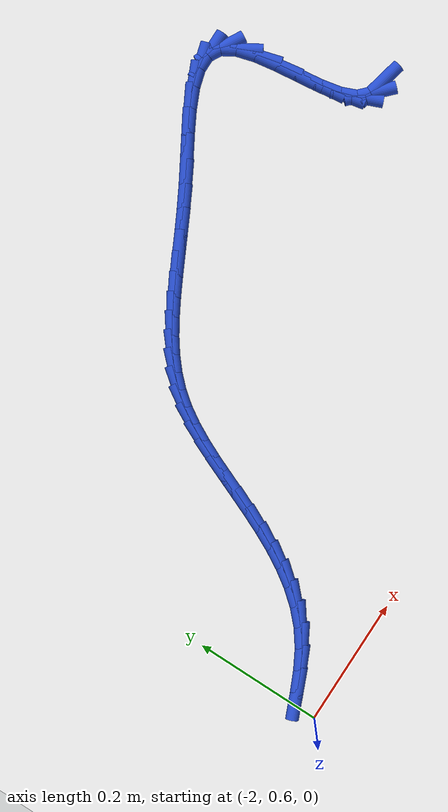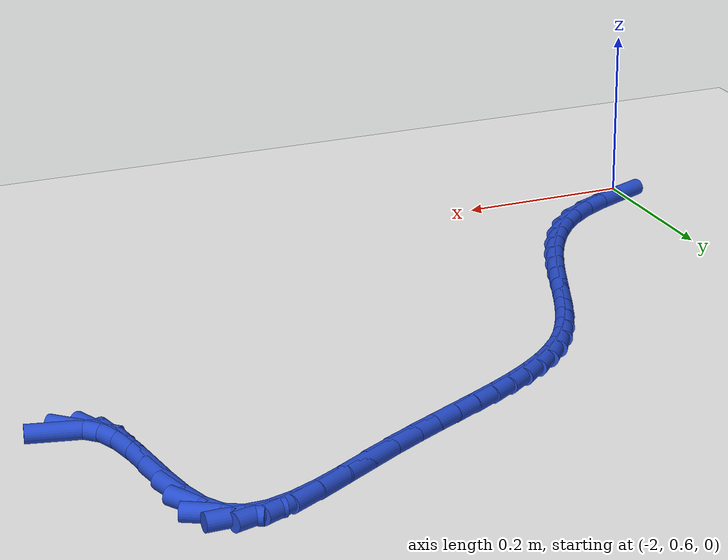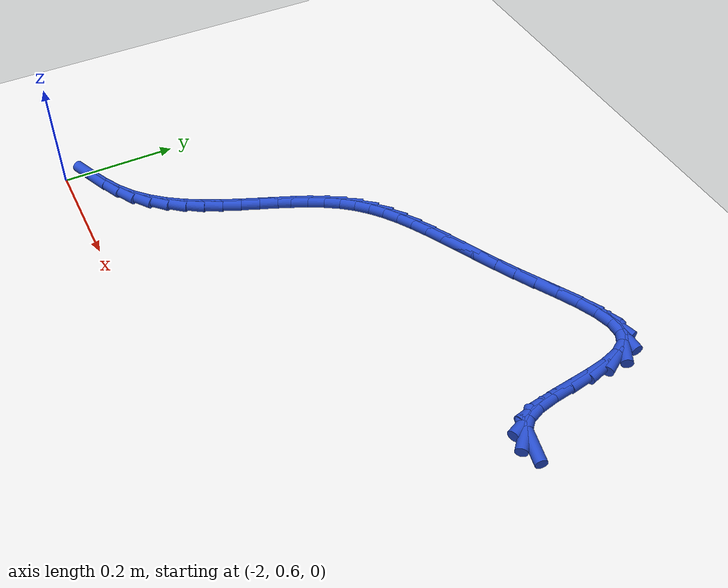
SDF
<sdf version="1.6">
 <world name="default">
  <model name="ground_plane">
   <static>1</static>
   <link name="link">
    <collision name="collision">
     <geometry><plane><normal>0 0 1</normal><size>100 100</size></plane></geometry>
     <surface><friction><ode><mu>100</mu><mu2>50</mu2></ode></friction></surface>
    </collision>
    <visual name="visual">
     <cast_shadows>0</cast_shadows>
     <geometry><plane><normal>0 0 1</normal><size>100 100</size></plane></geometry>
     <material>
      <script><uri>file://media/materials/scripts/gazebo.material</uri><name>Gazebo/WhiteGlow</name></script>
     </material>
    </visual>
   </link>
  </model>
  <model name="line">
   <link name="link_63">
    <pose>-1.1532234476981205 1.034662921738135 0.01 0 1.57 -0.22421597552221068</pose>
    <collision name="collision">
     <geometry><cylinder><radius>0.01</radius><length>0.08</length></cylinder></geometry>
    </collision>
    <visual name="visual">
     <material>
      <script><name>Gazebo/Blue</name><uri>file://media/materials/scripts/gazebo.material</uri></script>
     </material>
     <geometry><cylinder><radius>0.01</radius><length>0.08</length></cylinder></geometry>
    </visual>
   </link>
   <link name="link_64">
    <pose>-1.172145907120099 1.038978196619294 0.01 0 1.57 -0.76211372244683</pose>
    <collision name="collision">
     <geometry><cylinder><radius>0.01</radius><length>0.08</length></cylinder></geometry>
    </collision>
    <visual name="visual">
     <material>
      <script><name>Gazebo/Blue</name><uri>file://media/materials/scripts/gazebo.material</uri></script>
     </material>
     <geometry><cylinder><radius>0.01</radius><length>0.08</length></cylinder></geometry>
    </visual>
   </link>
   <link name="link_65">
    <pose>-1.1865720754225162 1.0527477252090103 0.01 0 1.57 -1.176701932565536</pose>
    <collision name="collision">
     <geometry><cylinder><radius>0.01</radius><length>0.08</length></cylinder></geometry>
    </collision>
    <visual name="visual">
     <material>
      <script><name>Gazebo/Blue</name><uri>file://media/materials/scripts/gazebo.material</uri></script>
     </material>
     <geometry><cylinder><radius>0.01</radius><length>0.08</length></cylinder></geometry>
    </visual>
   </link>
   <link name="link_66">
    <pose>-1.196382306854327 1.0763385629009252 0.01 0 1.57 -1.3641741149394202</pose>
    <collision name="collision">
     <geometry><cylinder><radius>0.01</radius><length>0.08</length></cylinder></geometry>
    </collision>
    <visual name="visual">
     <material>
      <script><name>Gazebo/Blue</name><uri>file://media/materials/scripts/gazebo.material</uri></script>
     </material>
     <geometry><cylinder><radius>0.01</radius><length>0.08</length></cylinder></geometry>
    </visual>
   </link>
   <link name="link_67">
    <pose>-1.2028511145712488 1.1071991733842588 0.01 0 1.57 -1.4386640644127144</pose>
    <collision name="collision">
     <geometry><cylinder><radius>0.01</radius><length>0.08</length></cylinder></geometry>
    </collision>
    <visual name="visual">
     <material>
      <script><name>Gazebo/Blue</name><uri>file://media/materials/scripts/gazebo.material</uri></script>
     </material>
     <geometry><cylinder><radius>0.01</radius><length>0.08</length></cylinder></geometry>
    </visual>
   </link>
   <link name="link_68">
    <pose>-1.2075086519510703 1.1422428522064645 0.01 0 1.57 -1.4502869412167136</pose>
    <collision name="collision">
     <geometry><cylinder><radius>0.01</radius><length>0.08</length></cylinder></geometry>
    </collision>
    <visual name="visual">
     <material>
      <script><name>Gazebo/Blue</name><uri>file://media/materials/scripts/gazebo.material</uri></script>
     </material>
     <geometry><cylinder><radius>0.01</radius><length>0.08</length></cylinder></geometry>
    </visual>
   </link>
   <link name="link_69">
    <pose>-1.2118850723715813 1.1783828949149986 0.01 0 1.57 -1.4075332361102582</pose>
    <collision name="collision">
     <geometry><cylinder><radius>0.01</radius><length>0.08</length></cylinder></geometry>
    </collision>
    <visual name="visual">
     <material>
      <script><name>Gazebo/Blue</name><uri>file://media/materials/scripts/gazebo.material</uri></script>
     </material>
     <geometry><cylinder><radius>0.01</radius><length>0.08</length></cylinder></geometry>
    </visual>
   </link>
   <link name="link_70">
    <pose>-1.217510529210571 1.2125325970573153 0.01 0 1.57 -1.2893774932133544</pose>
    <collision name="collision">
     <geometry><cylinder><radius>0.01</radius><length>0.08</length></cylinder></geometry>
    </collision>
    <visual name="visual">
     <material>
      <script><name>Gazebo/Blue</name><uri>file://media/materials/scripts/gazebo.material</uri></script>
     </material>
     <geometry><cylinder><radius>0.01</radius><length>0.08</length></cylinder></geometry>
    </visual>
   </link>
   <link name="link_71">
    <pose>-1.2259151758458275 1.2416052541808689 0.01 0 1.57 -1.0244672539413715</pose>
    <collision name="collision">
     <geometry><cylinder><radius>0.01</radius><length>0.08</length></cylinder></geometry>
    </collision>
    <visual name="visual">
     <material>
      <script><name>Gazebo/Blue</name><uri>file://media/materials/scripts/gazebo.material</uri></script>
     </material>
     <geometry><cylinder><radius>0.01</radius><length>0.08</length></cylinder></geometry>
    </visual>
   </link>
   <link name="link_72">
    <pose>-1.2386291656551405 1.2625141618331148 0.01 0 1.57 -0.5061247348028546</pose>
    <collision name="collision">
     <geometry><cylinder><radius>0.01</radius><length>0.08</length></cylinder></geometry>
    </collision>
    <visual name="visual">
     <material>
      <script><name>Gazebo/Blue</name><uri>file://media/materials/scripts/gazebo.material</uri></script>
     </material>
     <geometry><cylinder><radius>0.01</radius><length>0.08</length></cylinder></geometry>
    </visual>
   </link>
   <link name="link_73">
    <pose>-1.256935413481992 1.2726609841804362 0.01 0 1.57 -0.003616275205107365</pose>
    <collision name="collision">
     <geometry><cylinder><radius>0.01</radius><length>0.08</length></cylinder></geometry>
    </collision>
    <visual name="visual">
     <material>
      <script><name>Gazebo/Blue</name><uri>file://media/materials/scripts/gazebo.material</uri></script>
     </material>
     <geometry><cylinder><radius>0.01</radius><length>0.08</length></cylinder></geometry>
    </visual>
   </link>
   <link name="link_74">
    <pose>-1.2804468932286968 1.2727460085323137 0.01 0 1.57 0.2787907416674332</pose>
    <collision name="collision">
     <geometry><cylinder><radius>0.01</radius><length>0.08</length></cylinder></geometry>
    </collision>
    <visual name="visual">
     <material>
      <script><name>Gazebo/Blue</name><uri>file://media/materials/scripts/gazebo.material</uri></script>
     </material>
     <geometry><cylinder><radius>0.01</radius><length>0.08</length></cylinder></geometry>
    </visual>
   </link>
   <link name="link_75">
    <pose>-1.3080855146007453 1.2648345766722044 0.01 0 1.57 0.4236594504424177</pose>
    <collision name="collision">
     <geometry><cylinder><radius>0.01</radius><length>0.08</length></cylinder></geometry>
    </collision>
    <visual name="visual">
     <material>
      <script><name>Gazebo/Blue</name><uri>file://media/materials/scripts/gazebo.material</uri></script>
     </material>
     <geometry><cylinder><radius>0.01</radius><length>0.08</length></cylinder></geometry>
    </visual>
   </link>
   <link name="link_76">
    <pose>-1.3387709847617126 1.2509963810498377 0.01 0 1.57 0.496629983979397</pose>
    <collision name="collision">
     <geometry><cylinder><radius>0.01</radius><length>0.08</length></cylinder></geometry>
    </collision>
    <visual name="visual">
     <material>
      <script><name>Gazebo/Blue</name><uri>file://media/materials/scripts/gazebo.material</uri></script>
     </material>
     <geometry><cylinder><radius>0.01</radius><length>0.08</length></cylinder></geometry>
    </visual>
   </link>
   <link name="link_77">
    <pose>-1.3714230108751746 1.2333011141149428 0.01 0 1.57 0.5262626348909103</pose>
    <collision name="collision">
     <geometry><cylinder><radius>0.01</radius><length>0.08</length></cylinder></geometry>
    </collision>
    <visual name="visual">
     <material>
      <script><name>Gazebo/Blue</name><uri>file://media/materials/scripts/gazebo.material</uri></script>
     </material>
     <geometry><cylinder><radius>0.01</radius><length>0.08</length></cylinder></geometry>
    </visual>
   </link>
   <link name="link_78">
    <pose>-1.4049613001047063 1.213818468317248 0.01 0 1.57 0.522503709285398</pose>
    <collision name="collision">
     <geometry><cylinder><radius>0.01</radius><length>0.08</length></cylinder></geometry>
    </collision>
    <visual name="visual">
     <material>
      <script><name>Gazebo/Blue</name><uri>file://media/materials/scripts/gazebo.material</uri></script>
     </material>
     <geometry><cylinder><radius>0.01</radius><length>0.08</length></cylinder></geometry>
    </visual>
   </link>
   <link name="link_79">
    <pose>-1.4383067709681745 1.1946151083307028 0.01 0 1.57 0.4970661245395735</pose>
    <collision name="collision">
     <geometry><cylinder><radius>0.01</radius><length>0.08</length></cylinder></geometry>
    </collision>
    <visual name="visual">
     <material>
      <script><name>Gazebo/Blue</name><uri>file://media/materials/scripts/gazebo.material</uri></script>
     </material>
     <geometry><cylinder><radius>0.01</radius><length>0.08</length></cylinder></geometry>
    </visual>
   </link>
   <link name="link_80">
    <pose>-1.4706575389532925 1.1770648459797983 0.01 0 1.57 0.4764819505818271</pose>
    <collision name="collision">
     <geometry><cylinder><radius>0.01</radius><length>0.08</length></cylinder></geometry>
    </collision>
    <visual name="visual">
     <material>
      <script><name>Gazebo/Blue</name><uri>file://media/materials/scripts/gazebo.material</uri></script>
     </material>
     <geometry><cylinder><radius>0.01</radius><length>0.08</length></cylinder></geometry>
    </visual>
   </link>
   <link name="link_81">
    <pose>-1.501840509038577 1.160969835972242 0.01 0 1.57 0.4660484767350576</pose>
    <collision name="collision">
     <geometry><cylinder><radius>0.01</radius><length>0.08</length></cylinder></geometry>
    </collision>
    <visual name="visual">
     <material>
      <script><name>Gazebo/Blue</name><uri>file://media/materials/scripts/gazebo.material</uri></script>
     </material>
     <geometry><cylinder><radius>0.01</radius><length>0.08</length></cylinder></geometry>
    </visual>
   </link>
   <link name="link_82">
    <pose>-1.5317692893076578 1.1459155189099954 0.01 0 1.57 0.4673927219177404</pose>
    <collision name="collision">
     <geometry><cylinder><radius>0.01</radius><length>0.08</length></cylinder></geometry>
    </collision>
    <visual name="visual">
     <material>
      <script><name>Gazebo/Blue</name><uri>file://media/materials/scripts/gazebo.material</uri></script>
     </material>
     <geometry><cylinder><radius>0.01</radius><length>0.08</length></cylinder></geometry>
    </visual>
   </link>
   <link name="link_83">
    <pose>-1.5603574878441673 1.1314873353950214 0.01 0 1.57 0.4822041496776201</pose>
    <collision name="collision">
     <geometry><cylinder><radius>0.01</radius><length>0.08</length></cylinder></geometry>
    </collision>
    <visual name="visual">
     <material>
      <script><name>Gazebo/Blue</name><uri>file://media/materials/scripts/gazebo.material</uri></script>
     </material>
     <geometry><cylinder><radius>0.01</radius><length>0.08</length></cylinder></geometry>
    </visual>
   </link>
   <link name="link_84">
    <pose>-1.5875187127317354 1.117270726029283 0.01 0 1.57 0.5121724432227055</pose>
    <collision name="collision">
     <geometry><cylinder><radius>0.01</radius><length>0.08</length></cylinder></geometry>
    </collision>
    <visual name="visual">
     <material>
      <script><name>Gazebo/Blue</name><uri>file://media/materials/scripts/gazebo.material</uri></script>
     </material>
     <geometry><cylinder><radius>0.01</radius><length>0.08</length></cylinder></geometry>
    </visual>
   </link>
   <link name="link_85">
    <pose>-1.6131665720539932 1.1028511314147413 0.01 0 1.57 0.5588108666355526</pose>
    <collision name="collision">
     <geometry><cylinder><radius>0.01</radius><length>0.08</length></cylinder></geometry>
    </collision>
    <visual name="visual">
     <material>
      <script><name>Gazebo/Blue</name><uri>file://media/materials/scripts/gazebo.material</uri></script>
     </material>
     <geometry><cylinder><radius>0.01</radius><length>0.08</length></cylinder></geometry>
    </visual>
   </link>
   <link name="link_86">
    <pose>-1.6372146738945725 1.0878139921533603 0.01 0 1.57 0.6230987743830146</pose>
    <collision name="collision">
     <geometry><cylinder><radius>0.01</radius><length>0.08</length></cylinder></geometry>
    </collision>
    <visual name="visual">
     <material>
      <script><name>Gazebo/Blue</name><uri>file://media/materials/scripts/gazebo.material</uri></script>
     </material>
     <geometry><cylinder><radius>0.01</radius><length>0.08</length></cylinder></geometry>
    </visual>
   </link>
   <link name="link_87">
    <pose>-1.6595766263371037 1.0717447488471017 0.01 0 1.57 0.7049142490899662</pose>
    <collision name="collision">
     <geometry><cylinder><radius>0.01</radius><length>0.08</length></cylinder></geometry>
    </collision>
    <visual name="visual">
     <material>
      <script><name>Gazebo/Blue</name><uri>file://media/materials/scripts/gazebo.material</uri></script>
     </material>
     <geometry><cylinder><radius>0.01</radius><length>0.08</length></cylinder></geometry>
    </visual>
   </link>
   <link name="link_88">
    <pose>-1.6801660374652179 1.0542288420979282 0.01 0 1.57 0.8023656320555572</pose>
    <collision name="collision">
     <geometry><cylinder><radius>0.01</radius><length>0.08</length></cylinder></geometry>
    </collision>
    <visual name="visual">
     <material>
      <script><name>Gazebo/Blue</name><uri>file://media/materials/scripts/gazebo.material</uri></script>
     </material>
     <geometry><cylinder><radius>0.01</radius><length>0.08</length></cylinder></geometry>
    </visual>
   </link>
   <link name="link_89">
    <pose>-1.6988965153625462 1.0348517125078018 0.01 0 1.57 0.910975954347093</pose>
    <collision name="collision">
     <geometry><cylinder><radius>0.01</radius><length>0.08</length></cylinder></geometry>
    </collision>
    <visual name="visual">
     <material>
      <script><name>Gazebo/Blue</name><uri>file://media/materials/scripts/gazebo.material</uri></script>
     </material>
     <geometry><cylinder><radius>0.01</radius><length>0.08</length></cylinder></geometry>
    </visual>
   </link>
   <link name="link_90">
    <pose>-1.7156875911692449 1.013208627837079 0.01 0 1.57 1.0118537604088045</pose>
    <collision name="collision">
     <geometry><cylinder><radius>0.01</radius><length>0.08</length></cylinder></geometry>
    </collision>
    <visual name="visual">
     <material>
      <script><name>Gazebo/Blue</name><uri>file://media/materials/scripts/gazebo.material</uri></script>
     </material>
     <geometry><cylinder><radius>0.01</radius><length>0.08</length></cylinder></geometry>
    </visual>
   </link>
   <link name="link_91">
    <pose>-1.7306730079762702 0.9892502626806067 0.01 0 1.57 1.0874140884061145</pose>
    <collision name="collision">
     <geometry><cylinder><radius>0.01</radius><length>0.08</length></cylinder></geometry>
    </collision>
    <visual name="visual">
     <material>
      <script><name>Gazebo/Blue</name><uri>file://media/materials/scripts/gazebo.material</uri></script>
     </material>
     <geometry><cylinder><radius>0.01</radius><length>0.08</length></cylinder></geometry>
    </visual>
   </link>
   <link name="link_92">
    <pose>-1.7442558347484414 0.9633741399809534 0.01 0 1.57 1.1393204679525395</pose>
    <collision name="collision">
     <geometry><cylinder><radius>0.01</radius><length>0.08</length></cylinder></geometry>
    </collision>
    <visual name="visual">
     <material>
      <script><name>Gazebo/Blue</name><uri>file://media/materials/scripts/gazebo.material</uri></script>
     </material>
     <geometry><cylinder><radius>0.01</radius><length>0.08</length></cylinder></geometry>
    </visual>
   </link>
   <link name="link_93">
    <pose>-1.7568562677432438 0.936006199194553 0.01 0 1.57 1.1703008701899438</pose>
    <collision name="collision">
     <geometry><cylinder><radius>0.01</radius><length>0.08</length></cylinder></geometry>
    </collision>
    <visual name="visual">
     <material>
      <script><name>Gazebo/Blue</name><uri>file://media/materials/scripts/gazebo.material</uri></script>
     </material>
     <geometry><cylinder><radius>0.01</radius><length>0.08</length></cylinder></geometry>
    </visual>
   </link>
   <link name="link_94">
    <pose>-1.7688945032181644 0.9075723797778396 0.01 0 1.57 1.1824061928460694</pose>
    <collision name="collision">
     <geometry><cylinder><radius>0.01</radius><length>0.08</length></cylinder></geometry>
    </collision>
    <visual name="visual">
     <material>
      <script><name>Gazebo/Blue</name><uri>file://media/materials/scripts/gazebo.material</uri></script>
     </material>
     <geometry><cylinder><radius>0.01</radius><length>0.08</length></cylinder></geometry>
    </visual>
   </link>
   <link name="link_95">
    <pose>-1.7807907374306897 0.8784986211872469 0.01 0 1.57 1.1768434797243383</pose>
    <collision name="collision">
     <geometry><cylinder><radius>0.01</radius><length>0.08</length></cylinder></geometry>
    </collision>
    <visual name="visual">
     <material>
      <script><name>Gazebo/Blue</name><uri>file://media/materials/scripts/gazebo.material</uri></script>
     </material>
     <geometry><cylinder><radius>0.01</radius><length>0.08</length></cylinder></geometry>
    </visual>
   </link>
   <link name="link_96">
    <pose>-1.7929651666383062 0.8492108628792094 0.01 0 1.57 1.1540021616965688</pose>
    <collision name="collision">
     <geometry><cylinder><radius>0.01</radius><length>0.08</length></cylinder></geometry>
    </collision>
    <visual name="visual">
     <material>
      <script><name>Gazebo/Blue</name><uri>file://media/materials/scripts/gazebo.material</uri></script>
     </material>
     <geometry><cylinder><radius>0.01</radius><length>0.08</length></cylinder></geometry>
    </visual>
   </link>
   <link name="link_97">
    <pose>-1.8058379870984984 0.8201350443101602 0.01 0 1.57 1.1135708230732606</pose>
    <collision name="collision">
     <geometry><cylinder><radius>0.01</radius><length>0.08</length></cylinder></geometry>
    </collision>
    <visual name="visual">
     <material>
      <script><name>Gazebo/Blue</name><uri>file://media/materials/scripts/gazebo.material</uri></script>
     </material>
     <geometry><cylinder><radius>0.01</radius><length>0.08</length></cylinder></geometry>
    </visual>
   </link>
   <link name="link_98">
    <pose>-1.819829395068753 0.7916971049365334 0.01 0 1.57 1.0547444799766075</pose>
    <collision name="collision">
     <geometry><cylinder><radius>0.01</radius><length>0.08</length></cylinder></geometry>
    </collision>
    <visual name="visual">
     <material>
      <script><name>Gazebo/Blue</name><uri>file://media/materials/scripts/gazebo.material</uri></script>
     </material>
     <geometry><cylinder><radius>0.01</radius><length>0.08</length></cylinder></geometry>
    </visual>
   </link>
   <link name="link_99">
    <pose>-1.835359586806557 0.7643229842147634 0.01 0 1.57 0.976589583894132</pose>
    <collision name="collision">
     <geometry><cylinder><radius>0.01</radius><length>0.08</length></cylinder></geometry>
    </collision>
    <visual name="visual">
     <material>
      <script><name>Gazebo/Blue</name><uri>file://media/materials/scripts/gazebo.material</uri></script>
     </material>
     <geometry><cylinder><radius>0.01</radius><length>0.08</length></cylinder></geometry>
    </visual>
   </link>
   <link name="link_100">
    <pose>-1.8528487585693962 0.7384386216012838 0.01 0 1.57 0.8786623106220429</pose>
    <collision name="collision">
     <geometry><cylinder><radius>0.01</radius><length>0.08</length></cylinder></geometry>
    </collision>
    <visual name="visual">
     <material>
      <script><name>Gazebo/Blue</name><uri>file://media/materials/scripts/gazebo.material</uri></script>
     </material>
     <geometry><cylinder><radius>0.01</radius><length>0.08</length></cylinder></geometry>
    </visual>
   </link>
   <link name="link_101">
    <pose>-1.8727171066147565 0.7144699565525283 0.01 0 1.57 0.7619077685825196</pose>
    <collision name="collision">
     <geometry><cylinder><radius>0.01</radius><length>0.08</length></cylinder></geometry>
    </collision>
    <visual name="visual">
     <material>
      <script><name>Gazebo/Blue</name><uri>file://media/materials/scripts/gazebo.material</uri></script>
     </material>
     <geometry><cylinder><radius>0.01</radius><length>0.08</length></cylinder></geometry>
    </visual>
   </link>
   <link name="link_102">
    <pose>-1.8953848272001244 0.6928429285249313 0.01 0 1.57 0.6296791802496842</pose>
    <collision name="collision">
     <geometry><cylinder><radius>0.01</radius><length>0.08</length></cylinder></geometry>
    </collision>
    <visual name="visual">
     <material>
      <script><name>Gazebo/Blue</name><uri>file://media/materials/scripts/gazebo.material</uri></script>
     </material>
     <geometry><cylinder><radius>0.01</radius><length>0.08</length></cylinder></geometry>
    </visual>
   </link>
   <link name="link_103">
    <pose>-1.9212702411078668 0.6739822083189124 0.01 0 1.57 0.5055295690299338</pose>
    <collision name="collision">
     <geometry><cylinder><radius>0.01</radius><length>0.08</length></cylinder></geometry>
    </collision>
    <visual name="visual">
     <material>
      <script><name>Gazebo/Blue</name><uri>file://media/materials/scripts/gazebo.material</uri></script>
     </material>
     <geometry><cylinder><radius>0.01</radius><length>0.08</length></cylinder></geometry>
    </visual>
   </link>
   <link name="link_104">
    <pose>-1.9502465313291568 0.6579437109298757 0.01 0 1.57 0.42960698258940533</pose>
    <collision name="collision">
     <geometry><cylinder><radius>0.01</radius><length>0.08</length></cylinder></geometry>
    </collision>
    <visual name="visual">
     <material>
      <script><name>Gazebo/Blue</name><uri>file://media/materials/scripts/gazebo.material</uri></script>
     </material>
     <geometry><cylinder><radius>0.01</radius><length>0.08</length></cylinder></geometry>
    </visual>
   </link>
   <link name="link_105">
    <pose>-1.980888645567919 0.6439051664132329 0.01 0 1.57 0.40032225171635033</pose>
    <collision name="collision">
     <geometry><cylinder><radius>0.01</radius><length>0.08</length></cylinder></geometry>
    </collision>
    <visual name="visual">
     <material>
      <script><name>Gazebo/Blue</name><uri>file://media/materials/scripts/gazebo.material</uri></script>
     </material>
     <geometry><cylinder><radius>0.01</radius><length>0.08</length></cylinder></geometry>
    </visual>
   </link>
  </model>
 </world>
</sdf>
